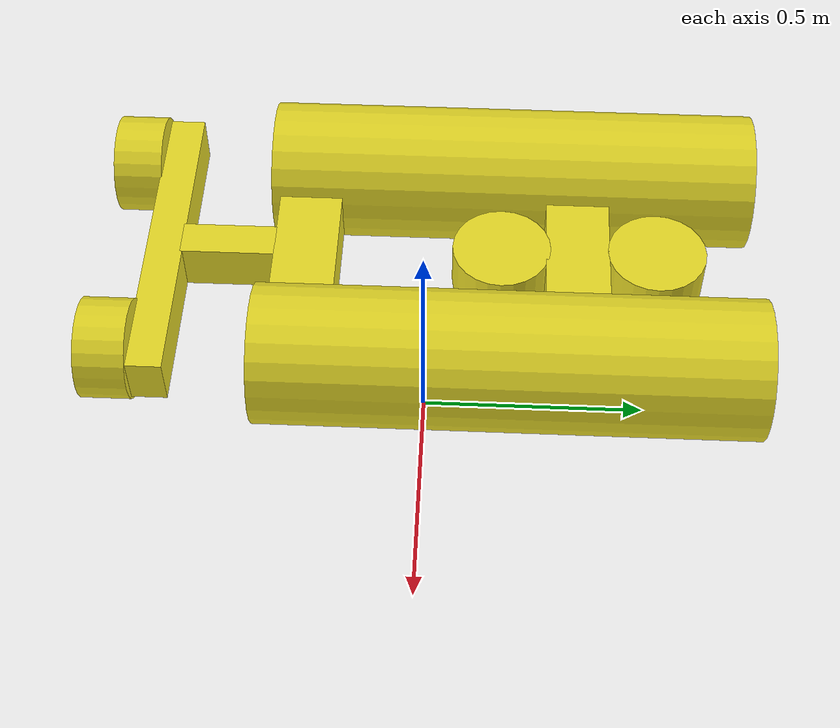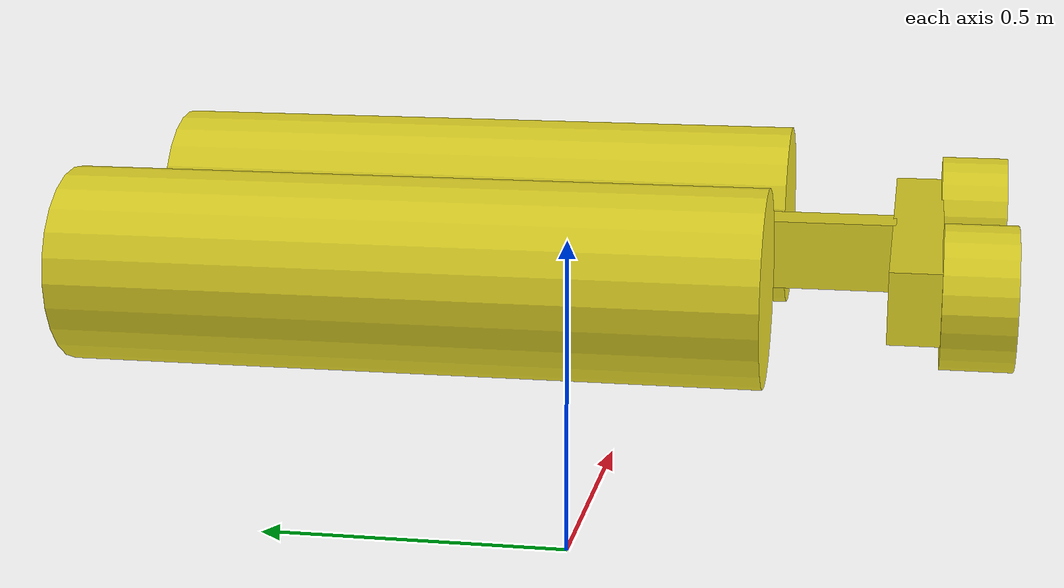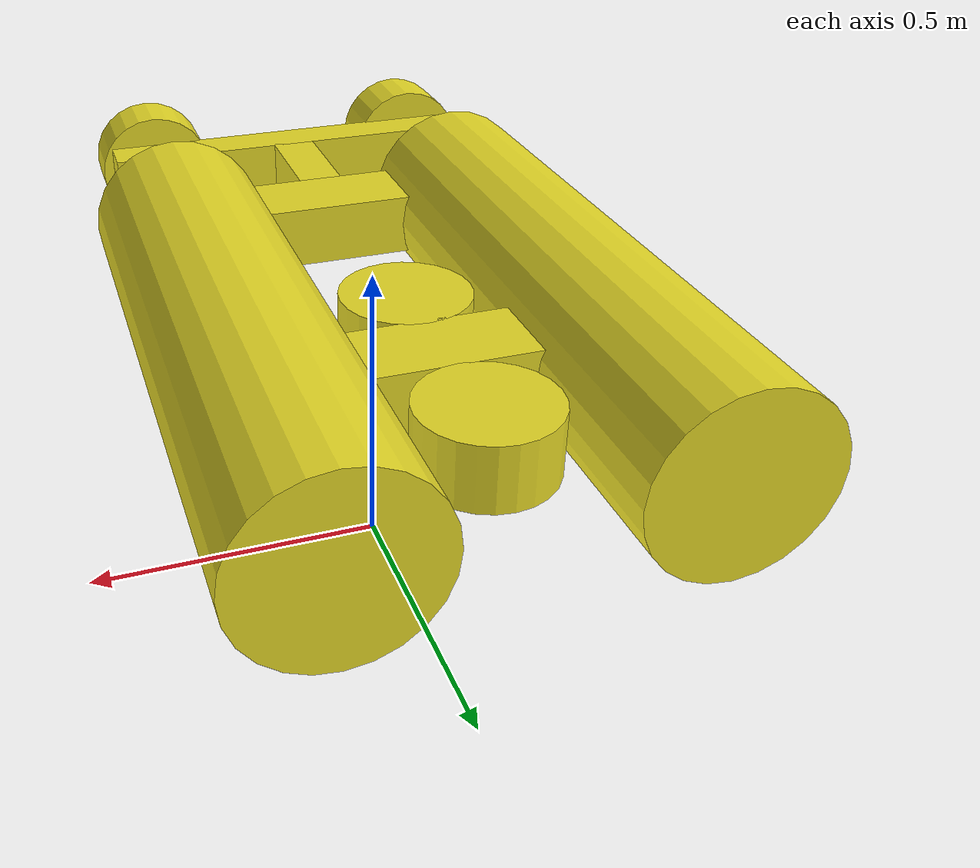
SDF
<?xml version='1.0'?>
<sdf version='1.7'>
  <model name='AUV_mk4'>
    <link name='tube_1'>
      <inertial>
        <mass>61.5752</mass>
        <inertia>
          <ixx>5.43299</ixx>
          <ixy>0</ixy>
          <ixz>0</ixz>
          <iyy>5.43299</iyy>
          <iyz>0</iyz>
          <izz>0.603437</izz>
        </inertia>
        <pose>0 0 0 0 -0 0</pose>
      </inertial>
      <pose>0.251383 0.178692 0.5 1.5708 -0 0</pose>
      <gravity>1</gravity>
      <self_collide>0</self_collide>
      <kinematic>0</kinematic>
      <enable_wind>0</enable_wind>
      <visual name='visual'>
        <pose>0 0 0 0 -0 0</pose>
        <geometry>
          <cylinder>
            <radius>0.14</radius>
            <length>1</length>
          </cylinder>
        </geometry>
        <material>
          <script>
            <uri>file://media/materials/scripts/gazebo.material</uri>
            <name>Gazebo/Yellow</name>
          </script>
          <shader type='pixel'>
            <normal_map>__default__</normal_map>
          </shader>
          <ambient>1 1 0 1</ambient>
          <diffuse>1 1 0 1</diffuse>
          <emissive>0 0 0 1</emissive>
        </material>
        <transparency>0</transparency>
        <cast_shadows>1</cast_shadows>
      </visual>
      <collision name='collision'>
        <laser_retro>0</laser_retro>
        <max_contacts>10</max_contacts>
        <pose>0 0 0 0 -0 0</pose>
        <geometry>
          <cylinder>
            <radius>0.14</radius>
            <length>1</length>
          </cylinder>
        </geometry>
        <surface>
          <friction>
            <ode>
              <mu>1</mu>
              <mu2>1</mu2>
              <fdir1>0 0 0</fdir1>
              <slip1>0</slip1>
              <slip2>0</slip2>
            </ode>
            <torsional>
              <coefficient>1</coefficient>
              <patch_radius>0</patch_radius>
              <surface_radius>0</surface_radius>
              <use_patch_radius>1</use_patch_radius>
              <ode>
                <slip>0</slip>
              </ode>
            </torsional>
          </friction>
          <bounce>
            <restitution_coefficient>0</restitution_coefficient>
            <threshold>1e+06</threshold>
          </bounce>
          <contact>
            <collide_without_contact>0</collide_without_contact>
            <collide_without_contact_bitmask>1</collide_without_contact_bitmask>
            <collide_bitmask>1</collide_bitmask>
            <ode>
              <soft_cfm>0</soft_cfm>
              <soft_erp>0.2</soft_erp>
              <kp>1e+13</kp>
              <kd>1</kd>
              <max_vel>0.01</max_vel>
              <min_depth>0</min_depth>
            </ode>
            <bullet>
              <split_impulse>1</split_impulse>
              <split_impulse_penetration_threshold>-0.01</split_impulse_penetration_threshold>
              <soft_cfm>0</soft_cfm>
              <soft_erp>0.2</soft_erp>
              <kp>1e+13</kp>
              <kd>1</kd>
            </bullet>
          </contact>
        </surface>
      </collision>

      <sensor type="ray" name="sensor_tube_1">
        <pose>0 0 -0.5 0 1.5708 0</pose>
        <visualize>true</visualize>
        <update_rate>30</update_rate>
        <ray>
          <scan>
            <horizontal>
              <samples>16</samples>
              <resolution>1</resolution>
              <min_angle>-0.00872665</min_angle>
              <max_angle>0.00872665</max_angle>
            </horizontal>
            <vertical>
              <samples>16</samples>
              <resolution>1</resolution>
              <min_angle>-0.00872665</min_angle>
              <max_angle>0.00872665</max_angle>
            </vertical>
          </scan>
          <range>
            <min>0.05</min>
            <max>70</max>
            <resolution>0.02</resolution>
          </range>
        </ray>
             <plugin filename="libgazebo_ros_ray_sensor.so" name="gazebo_ros_range_tube_1">
              <alwaysOn>true</alwaysOn>
              <updateRate>30</updateRate>
              <remapping>/gazebo_ros_range_tube_1/out:=/sensor/sonar/tube_1</remapping>
              <frameName>tube_1</frameName>
              <radiation>ULTRASOUND</radiation>
              <fov>0.2967</fov>
              <output_type>sensor_msgs/Range</output_type>
            </plugin>
      </sensor>

    </link>
    <link name='back_sup_1'>
      <inertial>
        <mass>3.2227</mass>
        <inertia>
          <ixx>0.00714829</ixx>
          <ixy>0</ixy>
          <ixz>0</ixz>
          <iyy>0.0194705</iyy>
          <iyz>0</iyz>
          <izz>0.0212476</izz>
        </inertia>
        <pose>0 0 0 0 -0 0</pose>
      </inertial>
      <pose>0 -0.238292 0.5 0 -0 0</pose>
      <gravity>1</gravity>
      <self_collide>0</self_collide>
      <kinematic>0</kinematic>
      <enable_wind>0</enable_wind>
      <visual name='visual'>
        <pose>0 0 0 0 -0 0</pose>
        <geometry>
          <box>
            <size>0.25 0.128908 0.1</size>
          </box>
        </geometry>
        <material>
          <script>
            <uri>file://media/materials/scripts/gazebo.material</uri>
            <name>Gazebo/Yellow</name>
          </script>
          <shader type='pixel'>
            <normal_map>__default__</normal_map>
          </shader>
          <ambient>1 1 0 1</ambient>
          <diffuse>1 1 0 1</diffuse>
          <emissive>0 0 0 1</emissive>
        </material>
        <transparency>0</transparency>
        <cast_shadows>1</cast_shadows>
      </visual>
      <collision name='collision'>
        <laser_retro>0</laser_retro>
        <max_contacts>10</max_contacts>
        <pose>0 0 0 0 -0 0</pose>
        <geometry>
          <box>
            <size>0.25 0.128908 0.1</size>
          </box>
        </geometry>
        <surface>
          <friction>
            <ode>
              <mu>1</mu>
              <mu2>1</mu2>
              <fdir1>0 0 0</fdir1>
              <slip1>0</slip1>
              <slip2>0</slip2>
            </ode>
            <torsional>
              <coefficient>1</coefficient>
              <patch_radius>0</patch_radius>
              <surface_radius>0</surface_radius>
              <use_patch_radius>1</use_patch_radius>
              <ode>
                <slip>0</slip>
              </ode>
            </torsional>
          </friction>
          <bounce>
            <restitution_coefficient>0</restitution_coefficient>
            <threshold>1e+06</threshold>
          </bounce>
          <contact>
            <collide_without_contact>0</collide_without_contact>
            <collide_without_contact_bitmask>1</collide_without_contact_bitmask>
            <collide_bitmask>1</collide_bitmask>
            <ode>
              <soft_cfm>0</soft_cfm>
              <soft_erp>0.2</soft_erp>
              <kp>1e+13</kp>
              <kd>1</kd>
              <max_vel>0.01</max_vel>
              <min_depth>0</min_depth>
            </ode>
            <bullet>
              <split_impulse>1</split_impulse>
              <split_impulse_penetration_threshold>-0.01</split_impulse_penetration_threshold>
              <soft_cfm>0</soft_cfm>
              <soft_erp>0.2</soft_erp>
              <kp>1e+13</kp>
              <kd>1</kd>
            </bullet>
          </contact>
        </surface>
      </collision>
    </link>
    <link name='back_sup_2'>
      <inertial>
        <mass>1.40862</mass>
        <inertia>
          <ixx>0.00181087</ixx>
          <ixy>0</ixy>
          <ixz>0</ixz>
          <iyy>0.00546576</iyy>
          <iyz>0</iyz>
          <izz>0.00492894</izz>
        </inertia>
        <pose>0 0 0 0 -0 0</pose>
      </inertial>
      <pose>0 -0.397401 0.5 0 -0 1.5708</pose>
      <gravity>1</gravity>
      <self_collide>0</self_collide>
      <kinematic>0</kinematic>
      <enable_wind>0</enable_wind>
      <visual name='visual'>
        <pose>0 0 0 0 -0 0</pose>
        <geometry>
          <box>
            <size>0.191214 0.073667 0.1</size>
          </box>
        </geometry>
        <material>
          <script>
            <uri>file://media/materials/scripts/gazebo.material</uri>
            <name>Gazebo/Yellow</name>
          </script>
          <shader type='pixel'>
            <normal_map>__default__</normal_map>
          </shader>
          <ambient>1 1 0 1</ambient>
          <diffuse>1 1 0 1</diffuse>
          <emissive>0 0 0 1</emissive>
        </material>
        <transparency>0</transparency>
        <cast_shadows>1</cast_shadows>
      </visual>
      <collision name='collision'>
        <laser_retro>0</laser_retro>
        <max_contacts>10</max_contacts>
        <pose>0 0 0 0 -0 0</pose>
        <geometry>
          <box>
            <size>0.191214 0.073667 0.1</size>
          </box>
        </geometry>
        <surface>
          <friction>
            <ode>
              <mu>1</mu>
              <mu2>1</mu2>
              <fdir1>0 0 0</fdir1>
              <slip1>0</slip1>
              <slip2>0</slip2>
            </ode>
            <torsional>
              <coefficient>1</coefficient>
              <patch_radius>0</patch_radius>
              <surface_radius>0</surface_radius>
              <use_patch_radius>1</use_patch_radius>
              <ode>
                <slip>0</slip>
              </ode>
            </torsional>
          </friction>
          <bounce>
            <restitution_coefficient>0</restitution_coefficient>
            <threshold>1e+06</threshold>
          </bounce>
          <contact>
            <collide_without_contact>0</collide_without_contact>
            <collide_without_contact_bitmask>1</collide_without_contact_bitmask>
            <collide_bitmask>1</collide_bitmask>
            <ode>
              <soft_cfm>0</soft_cfm>
              <soft_erp>0.2</soft_erp>
              <kp>1e+13</kp>
              <kd>1</kd>
              <max_vel>0.01</max_vel>
              <min_depth>0</min_depth>
            </ode>
            <bullet>
              <split_impulse>1</split_impulse>
              <split_impulse_penetration_threshold>-0.01</split_impulse_penetration_threshold>
              <soft_cfm>0</soft_cfm>
              <soft_erp>0.2</soft_erp>
              <kp>1e+13</kp>
              <kd>1</kd>
            </bullet>
          </contact>
        </surface>
      </collision>
    </link>
    <link name='fore_thruster'>
      <inertial>
        <mass>3.14159</mass>
        <inertia>
          <ixx>0.010472</ixx>
          <ixy>0</ixy>
          <ixz>0</ixz>
          <iyy>0.010472</iyy>
          <iyz>0</iyz>
          <izz>0.015708</izz>
        </inertia>
        <pose>0 0 0 0 -0 0</pose>
      </inertial>
      <pose>0 0.475723 0.5 0 -0 0</pose>
      <gravity>1</gravity>
      <self_collide>0</self_collide>
      <kinematic>0</kinematic>
      <enable_wind>0</enable_wind>
      <visual name='visual'>
        <pose>0 0 0 0 -0 0</pose>
        <geometry>
          <cylinder>
            <radius>0.1</radius>
            <length>0.1</length>
          </cylinder>
        </geometry>
        <material>
          <script>
            <uri>file://media/materials/scripts/gazebo.material</uri>
            <name>Gazebo/Yellow</name>
          </script>
          <shader type='pixel'>
            <normal_map>__default__</normal_map>
          </shader>
          <ambient>1 1 0 1</ambient>
          <diffuse>1 1 0 1</diffuse>
          <emissive>0 0 0 1</emissive>
        </material>
        <transparency>0</transparency>
        <cast_shadows>1</cast_shadows>
      </visual>
      <collision name='collision'>
        <laser_retro>0</laser_retro>
        <max_contacts>10</max_contacts>
        <pose>0 0 0 0 -0 0</pose>
        <geometry>
          <cylinder>
            <radius>0.1</radius>
            <length>0.1</length>
          </cylinder>
        </geometry>
        <surface>
          <friction>
            <ode>
              <mu>1</mu>
              <mu2>1</mu2>
              <fdir1>0 0 0</fdir1>
              <slip1>0</slip1>
              <slip2>0</slip2>
            </ode>
            <torsional>
              <coefficient>1</coefficient>
              <patch_radius>0</patch_radius>
              <surface_radius>0</surface_radius>
              <use_patch_radius>1</use_patch_radius>
              <ode>
                <slip>0</slip>
              </ode>
            </torsional>
          </friction>
          <bounce>
            <restitution_coefficient>0</restitution_coefficient>
            <threshold>1e+06</threshold>
          </bounce>
          <contact>
            <collide_without_contact>0</collide_without_contact>
            <collide_without_contact_bitmask>1</collide_without_contact_bitmask>
            <collide_bitmask>1</collide_bitmask>
            <ode>
              <soft_cfm>0</soft_cfm>
              <soft_erp>0.2</soft_erp>
              <kp>1e+13</kp>
              <kd>1</kd>
              <max_vel>0.01</max_vel>
              <min_depth>0</min_depth>
            </ode>
            <bullet>
              <split_impulse>1</split_impulse>
              <split_impulse_penetration_threshold>-0.01</split_impulse_penetration_threshold>
              <soft_cfm>0</soft_cfm>
              <soft_erp>0.2</soft_erp>
              <kp>1e+13</kp>
              <kd>1</kd>
            </bullet>
          </contact>
        </surface>
      </collision>
    </link>

   <link name='fore_thruster_reverse'>
      <inertial>
        <mass>3.14159</mass>
        <inertia>
          <ixx>0.010472</ixx>
          <ixy>0</ixy>
          <ixz>0</ixz>
          <iyy>0.010472</iyy>
          <iyz>0</iyz>
          <izz>0.015708</izz>
        </inertia>
        <pose>0 0 0 0 -0 0</pose>
      </inertial>
      <pose>0 0.16 0.5 0 -0 0</pose>
      <gravity>1</gravity>
      <self_collide>0</self_collide>
      <kinematic>0</kinematic>
      <enable_wind>0</enable_wind>
      <visual name='visual'>
        <pose>0 0 0 0 -0 0</pose>
        <geometry>
          <cylinder>
            <radius>0.1</radius>
            <length>0.1</length>
          </cylinder>
        </geometry>
        <material>
          <script>
            <uri>file://media/materials/scripts/gazebo.material</uri>
            <name>Gazebo/Yellow</name>
          </script>
          <shader type='pixel'>
            <normal_map>__default__</normal_map>
          </shader>
          <ambient>1 1 0 1</ambient>
          <diffuse>1 1 0 1</diffuse>
          <emissive>0 0 0 1</emissive>
        </material>
        <transparency>0</transparency>
        <cast_shadows>1</cast_shadows>
      </visual>
      <collision name='collision'>
        <laser_retro>0</laser_retro>
        <max_contacts>10</max_contacts>
        <pose>0 0 0 0 -0 0</pose>
        <geometry>
          <cylinder>
            <radius>0.1</radius>
            <length>0.1</length>
          </cylinder>
        </geometry>
        <surface>
          <friction>
            <ode>
              <mu>1</mu>
              <mu2>1</mu2>
              <fdir1>0 0 0</fdir1>
              <slip1>0</slip1>
              <slip2>0</slip2>
            </ode>
            <torsional>
              <coefficient>1</coefficient>
              <patch_radius>0</patch_radius>
              <surface_radius>0</surface_radius>
              <use_patch_radius>1</use_patch_radius>
              <ode>
                <slip>0</slip>
              </ode>
            </torsional>
          </friction>
          <bounce>
            <restitution_coefficient>0</restitution_coefficient>
            <threshold>1e+06</threshold>
          </bounce>
          <contact>
            <collide_without_contact>0</collide_without_contact>
            <collide_without_contact_bitmask>1</collide_without_contact_bitmask>
            <collide_bitmask>1</collide_bitmask>
            <ode>
              <soft_cfm>0</soft_cfm>
              <soft_erp>0.2</soft_erp>
              <kp>1e+13</kp>
              <kd>1</kd>
              <max_vel>0.01</max_vel>
              <min_depth>0</min_depth>
            </ode>
            <bullet>
              <split_impulse>1</split_impulse>
              <split_impulse_penetration_threshold>-0.01</split_impulse_penetration_threshold>
              <soft_cfm>0</soft_cfm>
              <soft_erp>0.2</soft_erp>
              <kp>1e+13</kp>
              <kd>1</kd>
            </bullet>
          </contact>
        </surface>
      </collision>
    </link>

    <link name='fore_thruster_support'>
      <inertial>
        <mass>3.2227</mass>
        <inertia>
          <ixx>0.00714829</ixx>
          <ixy>0</ixy>
          <ixz>0</ixz>
          <iyy>0.0194705</iyy>
          <iyz>0</iyz>
          <izz>0.0212476</izz>
        </inertia>
        <pose>0 0 0 0 -0 0</pose>
      </inertial>
      <pose>0 0.314978 0.5 0 -0 0</pose>
      <gravity>1</gravity>
      <self_collide>0</self_collide>
      <kinematic>0</kinematic>
      <enable_wind>0</enable_wind>
      <visual name='visual'>
        <pose>0 0 0 0 -0 0</pose>
        <geometry>
          <box>
            <size>0.25 0.128908 0.1</size>
          </box>
        </geometry>
        <material>
          <script>
            <uri>file://media/materials/scripts/gazebo.material</uri>
            <name>Gazebo/Yellow</name>
          </script>
          <shader type='pixel'>
            <normal_map>__default__</normal_map>
          </shader>
          <ambient>1 1 0 1</ambient>
          <diffuse>1 1 0 1</diffuse>
          <emissive>0 0 0 1</emissive>
        </material>
        <transparency>0</transparency>
        <cast_shadows>1</cast_shadows>
      </visual>
      <collision name='collision'>
        <laser_retro>0</laser_retro>
        <max_contacts>10</max_contacts>
        <pose>0 0 0 0 -0 0</pose>
        <geometry>
          <box>
            <size>0.25 0.128908 0.1</size>
          </box>
        </geometry>
        <surface>
          <friction>
            <ode>
              <mu>1</mu>
              <mu2>1</mu2>
              <fdir1>0 0 0</fdir1>
              <slip1>0</slip1>
              <slip2>0</slip2>
            </ode>
            <torsional>
              <coefficient>1</coefficient>
              <patch_radius>0</patch_radius>
              <surface_radius>0</surface_radius>
              <use_patch_radius>1</use_patch_radius>
              <ode>
                <slip>0</slip>
              </ode>
            </torsional>
          </friction>
          <bounce>
            <restitution_coefficient>0</restitution_coefficient>
            <threshold>1e+06</threshold>
          </bounce>
          <contact>
            <collide_without_contact>0</collide_without_contact>
            <collide_without_contact_bitmask>1</collide_without_contact_bitmask>
            <collide_bitmask>1</collide_bitmask>
            <ode>
              <soft_cfm>0</soft_cfm>
              <soft_erp>0.2</soft_erp>
              <kp>1e+13</kp>
              <kd>1</kd>
              <max_vel>0.01</max_vel>
              <min_depth>0</min_depth>
            </ode>
            <bullet>
              <split_impulse>1</split_impulse>
              <split_impulse_penetration_threshold>-0.01</split_impulse_penetration_threshold>
              <soft_cfm>0</soft_cfm>
              <soft_erp>0.2</soft_erp>
              <kp>1e+13</kp>
              <kd>1</kd>
            </bullet>
          </contact>
        </surface>
      </collision>
    </link>
    <link name='port_thruster'>
      <inertial>
        <mass>3.14159</mass>
        <inertia>
          <ixx>0.010472</ixx>
          <ixy>0</ixy>
          <ixz>0</ixz>
          <iyy>0.010472</iyy>
          <iyz>0</iyz>
          <izz>0.015708</izz>
        </inertia>
        <pose>0 0 0 0 -0 0</pose>
      </inertial>
      <pose>-0.251383 -0.609279 0.5 1.5708 0 0</pose>
      <gravity>1</gravity>
      <self_collide>0</self_collide>
      <kinematic>0</kinematic>
      <enable_wind>0</enable_wind>
      <visual name='visual'>
        <pose>0 0 0 0 -0 0</pose>
        <geometry>
          <cylinder>
            <radius>0.1</radius>
            <length>0.1</length>
          </cylinder>
        </geometry>
        <material>
          <script>
            <uri>file://media/materials/scripts/gazebo.material</uri>
            <name>Gazebo/Yellow</name>
          </script>
          <shader type='pixel'>
            <normal_map>__default__</normal_map>
          </shader>
          <ambient>1 1 0 1</ambient>
          <diffuse>1 1 0 1</diffuse>
          <emissive>0 0 0 1</emissive>
        </material>
        <transparency>0</transparency>
        <cast_shadows>1</cast_shadows>
      </visual>
      <collision name='collision'>
        <laser_retro>0</laser_retro>
        <max_contacts>10</max_contacts>
        <pose>0 0 0 0 -0 0</pose>
        <geometry>
          <cylinder>
            <radius>0.1</radius>
            <length>0.1</length>
          </cylinder>
        </geometry>
        <surface>
          <friction>
            <ode>
              <mu>1</mu>
              <mu2>1</mu2>
              <fdir1>0 0 0</fdir1>
              <slip1>0</slip1>
              <slip2>0</slip2>
            </ode>
            <torsional>
              <coefficient>1</coefficient>
              <patch_radius>0</patch_radius>
              <surface_radius>0</surface_radius>
              <use_patch_radius>1</use_patch_radius>
              <ode>
                <slip>0</slip>
              </ode>
            </torsional>
          </friction>
          <bounce>
            <restitution_coefficient>0</restitution_coefficient>
            <threshold>1e+06</threshold>
          </bounce>
          <contact>
            <collide_without_contact>0</collide_without_contact>
            <collide_without_contact_bitmask>1</collide_without_contact_bitmask>
            <collide_bitmask>1</collide_bitmask>
            <ode>
              <soft_cfm>0</soft_cfm>
              <soft_erp>0.2</soft_erp>
              <kp>1e+13</kp>
              <kd>1</kd>
              <max_vel>0.01</max_vel>
              <min_depth>0</min_depth>
            </ode>
            <bullet>
              <split_impulse>1</split_impulse>
              <split_impulse_penetration_threshold>-0.01</split_impulse_penetration_threshold>
              <soft_cfm>0</soft_cfm>
              <soft_erp>0.2</soft_erp>
              <kp>1e+13</kp>
              <kd>1</kd>
            </bullet>
          </contact>
        </surface>
      </collision>
    </link>
    <link name='starboard_thruster'>
      <inertial>
        <mass>3.14159</mass>
        <inertia>
          <ixx>0.010472</ixx>
          <ixy>0</ixy>
          <ixz>0</ixz>
          <iyy>0.010472</iyy>
          <iyz>0</iyz>
          <izz>0.015708</izz>
        </inertia>
        <pose>0 0 0 0 -0 0</pose>
      </inertial>
      <pose>0.251383 -0.609279 0.5 1.5708 0 0</pose>
      <gravity>1</gravity>
      <self_collide>0</self_collide>
      <kinematic>0</kinematic>
      <enable_wind>0</enable_wind>
      <visual name='visual'>
        <pose>0 0 0 0 -0 0</pose>
        <geometry>
          <cylinder>
            <radius>0.1</radius>
            <length>0.1</length>
          </cylinder>
        </geometry>
        <material>
          <script>
            <uri>file://media/materials/scripts/gazebo.material</uri>
            <name>Gazebo/Yellow</name>
          </script>
          <shader type='pixel'>
            <normal_map>__default__</normal_map>
          </shader>
          <ambient>1 1 0 1</ambient>
          <diffuse>1 1 0 1</diffuse>
          <emissive>0 0 0 1</emissive>
        </material>
        <transparency>0</transparency>
        <cast_shadows>1</cast_shadows>
      </visual>
      <collision name='collision'>
        <laser_retro>0</laser_retro>
        <max_contacts>10</max_contacts>
        <pose>0 0 0 0 -0 0</pose>
        <geometry>
          <cylinder>
            <radius>0.1</radius>
            <length>0.1</length>
          </cylinder>
        </geometry>
        <surface>
          <friction>
            <ode>
              <mu>1</mu>
              <mu2>1</mu2>
              <fdir1>0 0 0</fdir1>
              <slip1>0</slip1>
              <slip2>0</slip2>
            </ode>
            <torsional>
              <coefficient>1</coefficient>
              <patch_radius>0</patch_radius>
              <surface_radius>0</surface_radius>
              <use_patch_radius>1</use_patch_radius>
              <ode>
                <slip>0</slip>
              </ode>
            </torsional>
          </friction>
          <bounce>
            <restitution_coefficient>0</restitution_coefficient>
            <threshold>1e+06</threshold>
          </bounce>
          <contact>
            <collide_without_contact>0</collide_without_contact>
            <collide_without_contact_bitmask>1</collide_without_contact_bitmask>
            <collide_bitmask>1</collide_bitmask>
            <ode>
              <soft_cfm>0</soft_cfm>
              <soft_erp>0.2</soft_erp>
              <kp>1e+13</kp>
              <kd>1</kd>
              <max_vel>0.01</max_vel>
              <min_depth>0</min_depth>
            </ode>
            <bullet>
              <split_impulse>1</split_impulse>
              <split_impulse_penetration_threshold>-0.01</split_impulse_penetration_threshold>
              <soft_cfm>0</soft_cfm>
              <soft_erp>0.2</soft_erp>
              <kp>1e+13</kp>
              <kd>1</kd>
            </bullet>
          </contact>
        </surface>
      </collision>
    </link>
    <link name='thruster_sup'>
      <inertial>
        <mass>4.89023</mass>
        <inertia>
          <ixx>0.00628673</ixx>
          <ixy>0</ixy>
          <ixz>0</ixz>
          <iyy>0.183656</iyy>
          <iyz>0</iyz>
          <izz>0.181793</izz>
        </inertia>
        <pose>0 0 0 0 -0 0</pose>
      </inertial>
      <pose>0 -0.525087 0.5 0 -0 0</pose>
      <gravity>1</gravity>
      <self_collide>0</self_collide>
      <kinematic>0</kinematic>
      <enable_wind>0</enable_wind>
      <visual name='visual'>
        <pose>0 0 0 0 -0 0</pose>
        <geometry>
          <box>
            <size>0.663829 0.073667 0.1</size>
          </box>
        </geometry>
        <material>
          <script>
            <uri>file://media/materials/scripts/gazebo.material</uri>
            <name>Gazebo/Yellow</name>
          </script>
          <shader type='pixel'>
            <normal_map>__default__</normal_map>
          </shader>
          <ambient>1 1 0 1</ambient>
          <diffuse>1 1 0 1</diffuse>
          <emissive>0 0 0 1</emissive>
        </material>
        <transparency>0</transparency>
        <cast_shadows>1</cast_shadows>
      </visual>
      <collision name='collision'>
        <laser_retro>0</laser_retro>
        <max_contacts>10</max_contacts>
        <pose>0 0 0 0 -0 0</pose>
        <geometry>
          <box>
            <size>0.663829 0.073667 0.1</size>
          </box>
        </geometry>
        <surface>
          <friction>
            <ode>
              <mu>1</mu>
              <mu2>1</mu2>
              <fdir1>0 0 0</fdir1>
              <slip1>0</slip1>
              <slip2>0</slip2>
            </ode>
            <torsional>
              <coefficient>1</coefficient>
              <patch_radius>0</patch_radius>
              <surface_radius>0</surface_radius>
              <use_patch_radius>1</use_patch_radius>
              <ode>
                <slip>0</slip>
              </ode>
            </torsional>
          </friction>
          <bounce>
            <restitution_coefficient>0</restitution_coefficient>
            <threshold>1e+06</threshold>
          </bounce>
          <contact>
            <collide_without_contact>0</collide_without_contact>
            <collide_without_contact_bitmask>1</collide_without_contact_bitmask>
            <collide_bitmask>1</collide_bitmask>
            <ode>
              <soft_cfm>0</soft_cfm>
              <soft_erp>0.2</soft_erp>
              <kp>1e+13</kp>
              <kd>1</kd>
              <max_vel>0.01</max_vel>
              <min_depth>0</min_depth>
            </ode>
            <bullet>
              <split_impulse>1</split_impulse>
              <split_impulse_penetration_threshold>-0.01</split_impulse_penetration_threshold>
              <soft_cfm>0</soft_cfm>
              <soft_erp>0.2</soft_erp>
              <kp>1e+13</kp>
              <kd>1</kd>
            </bullet>
          </contact>
        </surface>
      </collision>
    </link>
    <link name='tube_2'>
      <inertial>
        <mass>61.5752</mass>
        <inertia>
          <ixx>5.43299</ixx>
          <ixy>0</ixy>
          <ixz>0</ixz>
          <iyy>5.43299</iyy>
          <iyz>0</iyz>
          <izz>0.603437</izz>
        </inertia>
        <pose>0 0 0 0 -0 0</pose>
      </inertial>
      <pose>-0.251383 0.178692 0.5 1.5708 -0 0</pose>
      <gravity>1</gravity>
      <self_collide>0</self_collide>
      <kinematic>0</kinematic>
      <enable_wind>0</enable_wind>
      <visual name='visual'>
        <pose>0 0 0 0 -0 0</pose>
        <geometry>
          <cylinder>
            <radius>0.14</radius>
            <length>1</length>
          </cylinder>
        </geometry>
        <material>
          <script>
            <uri>file://media/materials/scripts/gazebo.material</uri>
            <name>Gazebo/Yellow</name>
          </script>
          <shader type='pixel'>
            <normal_map>__default__</normal_map>
          </shader>
          <ambient>1 1 0 1</ambient>
          <diffuse>1 1 0 1</diffuse>
          <emissive>0 0 0 1</emissive>
        </material>
        <transparency>0</transparency>
        <cast_shadows>1</cast_shadows>
      </visual>
      <collision name='collision'>
        <laser_retro>0</laser_retro>
        <max_contacts>10</max_contacts>
        <pose>0 0 0 0 -0 0</pose>
        <geometry>
          <cylinder>
            <radius>0.14</radius>
            <length>1</length>
          </cylinder>
        </geometry>
        <surface>
          <friction>
            <ode>
              <mu>1</mu>
              <mu2>1</mu2>
              <fdir1>0 0 0</fdir1>
              <slip1>0</slip1>
              <slip2>0</slip2>
            </ode>
            <torsional>
              <coefficient>1</coefficient>
              <patch_radius>0</patch_radius>
              <surface_radius>0</surface_radius>
              <use_patch_radius>1</use_patch_radius>
              <ode>
                <slip>0</slip>
              </ode>
            </torsional>
          </friction>
          <bounce>
            <restitution_coefficient>0</restitution_coefficient>
            <threshold>1e+06</threshold>
          </bounce>
          <contact>
            <collide_without_contact>0</collide_without_contact>
            <collide_without_contact_bitmask>1</collide_without_contact_bitmask>
            <collide_bitmask>1</collide_bitmask>
            <ode>
              <soft_cfm>0</soft_cfm>
              <soft_erp>0.2</soft_erp>
              <kp>1e+13</kp>
              <kd>1</kd>
              <max_vel>0.01</max_vel>
              <min_depth>0</min_depth>
            </ode>
            <bullet>
              <split_impulse>1</split_impulse>
              <split_impulse_penetration_threshold>-0.01</split_impulse_penetration_threshold>
              <soft_cfm>0</soft_cfm>
              <soft_erp>0.2</soft_erp>
              <kp>1e+13</kp>
              <kd>1</kd>
            </bullet>
          </contact>
        </surface>
      </collision>
      <sensor type="ray" name="sensor_tube_2">
        <pose>0 0 -0.5 0 1.57 0</pose>
        <visualize>true</visualize>
        <update_rate>30</update_rate>
        <ray>
          <scan>
            <horizontal>
              <samples>16</samples>
              <resolution>1</resolution>
              <min_angle>-0.00872665</min_angle>
              <max_angle>0.00872665</max_angle>
            </horizontal>
            <vertical>
              <samples>16</samples>
              <resolution>1</resolution>
              <min_angle>-0.00872665</min_angle>
              <max_angle>0.00872665</max_angle>
            </vertical>
          </scan>
          <range>
            <min>0.05</min>
            <max>70</max>
            <resolution>0.02</resolution>
          </range>
        </ray>
              <plugin filename="libgazebo_ros_ray_sensor.so" name="gazebo_ros_range_tube_2">
              <alwaysOn>true</alwaysOn>
              <updateRate>30</updateRate>
              <remapping>/gazebo_ros_range_tube_2/out:=/sensor/sonar/tube_2</remapping>
              <frameName>tube_1</frameName>
              <radiation>ULTRASOUND</radiation>
              <fov>0.2967</fov>
              <output_type>sensor_msgs/Range</output_type>
            </plugin>
      </sensor>
    </link>
    <joint name='back_sup_1_JOINT_5' type='fixed'>
      <parent>back_sup_1</parent>
      <child>back_sup_2</child>
      <pose>0 0 0 0 -0 0</pose>
      <physics>
        <ode>
          <limit>
            <cfm>0</cfm>
            <erp>0.2</erp>
          </limit>
          <suspension>
            <cfm>0</cfm>
            <erp>0.2</erp>
          </suspension>
        </ode>
      </physics>
    </joint>
    <joint name='back_sup_2_JOINT_6' type='fixed'>
      <parent>back_sup_2</parent>
      <child>thruster_sup</child>
      <pose>0 0 0 0 -0 0</pose>
      <physics>
        <ode>
          <limit>
            <cfm>0</cfm>
            <erp>0.2</erp>
          </limit>
          <suspension>
            <cfm>0</cfm>
            <erp>0.2</erp>
          </suspension>
        </ode>
      </physics>
    </joint>
    <joint name='fore_thruster_support_JOINT_0' type='fixed'>
      <parent>fore_thruster_support</parent>
      <child>tube_2</child>
      <pose>0 0 0 0 -0 0</pose>
      <physics>
        <ode>
          <limit>
            <cfm>0</cfm>
            <erp>0.2</erp>
          </limit>
          <suspension>
            <cfm>0</cfm>
            <erp>0.2</erp>
          </suspension>
        </ode>
      </physics>
    </joint>
    <joint name='fore_thruster_support_JOINT_1' type='fixed'>
      <parent>fore_thruster_support</parent>
      <child>tube_1</child>
      <pose>0 0 0 0 -0 0</pose>
      <physics>
        <ode>
          <limit>
            <cfm>0</cfm>
            <erp>0.2</erp>
          </limit>
          <suspension>
            <cfm>0</cfm>
            <erp>0.2</erp>
          </suspension>
        </ode>
      </physics>
    </joint>
        <joint name='fore_thruster_support_JOINT_2' type='fixed'>
      <parent>fore_thruster_support</parent>
      <child>fore_thruster_reverse</child>
      <pose>0 0 0 0 -0 0</pose>
      <physics>
        <ode>
          <limit>
            <cfm>0</cfm>
            <erp>0.2</erp>
          </limit>
          <suspension>
            <cfm>0</cfm>
            <erp>0.2</erp>
          </suspension>
        </ode>
      </physics>
    </joint>

        <joint name='fore_thruster_support_JOINT_3' type='fixed'>
      <parent>fore_thruster_support</parent>
      <child>fore_thruster</child>
      <pose>0 0 0 0 -0 0</pose>
      <physics>
        <ode>
          <limit>
            <cfm>0</cfm>
            <erp>0.2</erp>
          </limit>
          <suspension>
            <cfm>0</cfm>
            <erp>0.2</erp>
          </suspension>
        </ode>
      </physics>
    </joint>

    <joint name='thruster_sup_JOINT_7' type='fixed'>
      <parent>thruster_sup</parent>
      <child>port_thruster</child>
      <pose>0 0 0 0 -0 0</pose>
      <physics>
        <ode>
          <limit>
            <cfm>0</cfm>
            <erp>0.2</erp>
          </limit>
          <suspension>
            <cfm>0</cfm>
            <erp>0.2</erp>
          </suspension>
        </ode>
      </physics>
    </joint>
    <joint name='thruster_sup_JOINT_8' type='fixed'>
      <parent>thruster_sup</parent>
      <child>starboard_thruster</child>
      <pose>0 0 0 0 -0 0</pose>
      <physics>
        <ode>
          <limit>
            <cfm>0</cfm>
            <erp>0.2</erp>
          </limit>
          <suspension>
            <cfm>0</cfm>
            <erp>0.2</erp>
          </suspension>
        </ode>
      </physics>
    </joint>
    <joint name='tube_1_JOINT_4' type='fixed'>
      <parent>tube_1</parent>
      <child>back_sup_1</child>
      <pose>0 0 0 0 -0 0</pose>
      <physics>
        <ode>
          <limit>
            <cfm>0</cfm>
            <erp>0.2</erp>
          </limit>
          <suspension>
            <cfm>0</cfm>
            <erp>0.2</erp>
          </suspension>
        </ode>
      </physics>
    </joint>
    <joint name='tube_2_JOINT_3' type='fixed'>
      <parent>tube_2</parent>
      <child>back_sup_1</child>
      <pose>0 0 0 0 -0 0</pose>
      <physics>
        <ode>
          <limit>
            <cfm>0</cfm>
            <erp>0.2</erp>
          </limit>
          <suspension>
            <cfm>0</cfm>
            <erp>0.2</erp>
          </suspension>
        </ode>
      </physics>
    </joint>
    <static>0</static>
    <allow_auto_disable>1</allow_auto_disable>
    <plugin name='gazebo_ros_force_fore' filename='libgazebo_ros_force.so'>
      <namespace>/thrust</namespace>
      <remapping>gazebo_ros_force:=fore</remapping>
      <link_name>fore_thruster</link_name>
      <force_frame>link</force_frame>
    </plugin>

    <plugin name='gazebo_ros_force_fore_reverse' filename='libgazebo_ros_force.so'>
      <namespace>/thrust</namespace>
      <remapping>gazebo_ros_force:=fore_reverse</remapping>
      <link_name>fore_thruster_reverse</link_name>
      <force_frame>link</force_frame>
    </plugin>

    <plugin name='gazebo_ros_force_port' filename='libgazebo_ros_force.so'>
      <namespace>/thrust</namespace>
      <remapping>gazebo_ros_force:=port</remapping>
      <link_name>port_thruster</link_name>
      <force_frame>link</force_frame>
    </plugin>
    <plugin name='gazebo_ros_force_starboard' filename='libgazebo_ros_force.so'>
      <namespace>/thrust</namespace>
      <remapping>gazebo_ros_force:=starboard</remapping>
      <link_name>starboard_thruster</link_name>
      <force_frame>link</force_frame>
    </plugin>
    <plugin name='hydrodrag_plugin_tube1' filename='libhydro_drag.so'>
      <link>tube_1</link>
      <X_uu>100</X_uu>
      <Y_vv>5</Y_vv>
      <Z_ww>5</Z_ww>
      <K_pp>5</K_pp>
      <M_qq>5</M_qq>
      <N_rr>5</N_rr>
    </plugin>
    <plugin name='hydrodrag_plugin_tube2' filename='libhydro_drag.so'>
      <link>tube_2</link>
      <X_uu>100</X_uu>
      <Y_vv>5</Y_vv>
      <Z_ww>5</Z_ww>
      <K_pp>5</K_pp>
      <M_qq>5</M_qq>
      <N_rr>5</N_rr>
    </plugin>
    <plugin name='added_mass_tube1' filename='libadded_mass.so'>
      <link>tube_1</link>
      <X_u>292.1</X_u>
      <Y_v>61.57</Y_v>
      <Z_w>292.1</Z_w>
      <K_p>5</K_p>
      <M_q>5</M_q>
      <N_r>5</N_r>
    </plugin>
    <plugin name='added_mass_tube2' filename='libadded_mass.so'>
      <link>tube_2</link>
      <X_u>292.1</X_u>
      <Y_v>61.57</Y_v>
      <Z_w>292.1</Z_w>
      <K_p>5</K_p>
      <M_q>5</M_q>
      <N_r>5</N_r>
    </plugin>
    <plugin name="imu" filename="libgazebo_ros_p3d.so">
      <body_name>fore_thruster_support</body_name>
      <gaussian_noise>0.0</gaussian_noise>
      <remapping>odom:=ideal_sensor</remapping>
      <frameName>tube_1</frameName>
    </plugin>
  </model>
</sdf>
